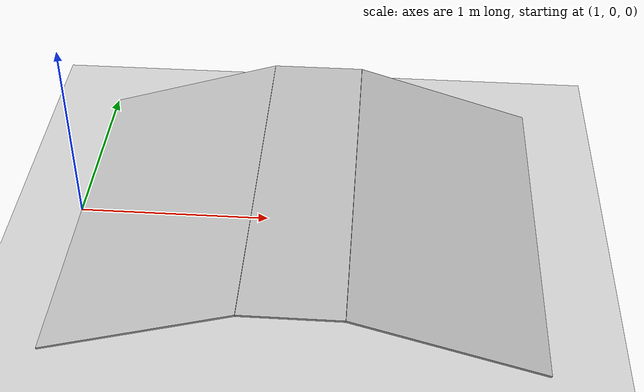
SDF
<?xml version="1.0" ?>
<sdf version="1.4">
  <world name="default">
    <include>
      <uri>model://ground_plane</uri>
    </include>
    <include>
      <uri>model://sun</uri>
    </include>
    <model name="slope_up">
      <static>true</static>
      <pose>1.4777 0 0.1478 0 -0.3 0</pose>
      <link name="link">
        <collision name="collision">
          <geometry>
            <box>
              <size>1 2 0.01</size>
            </box>
          </geometry>
        </collision>
        <visual name="visual">
          <geometry>
            <box>
              <size>1 2 0.01</size>
            </box>
          </geometry>
        </visual>
      </link>
    </model>
    <model name="platform">
      <static>true</static>
      <pose>2.2053 0 0.2955 0 0 0</pose>
      <link name="link">
        <collision name="collision">
          <geometry>
            <box>
              <size>0.5 2 0.01</size>
            </box>
          </geometry>
        </collision>
        <visual name="visual">
          <geometry>
            <box>
              <size>0.5 2 0.01</size>
            </box>
          </geometry>
        </visual>
      </link>
    </model>
    <model name="slope_down">
      <static>true</static>
      <pose>2.9330 0 0.1478 0 0.3 0</pose>
      <link name="link">
        <collision name="collision">
          <geometry>
            <box>
              <size>1 2 0.01</size>
            </box>
          </geometry>
        </collision>
        <visual name="visual">
          <geometry>
            <box>
              <size>1 2 0.01</size>
            </box>
          </geometry>
        </visual>
      </link>
    </model>
  </world>
</sdf>
